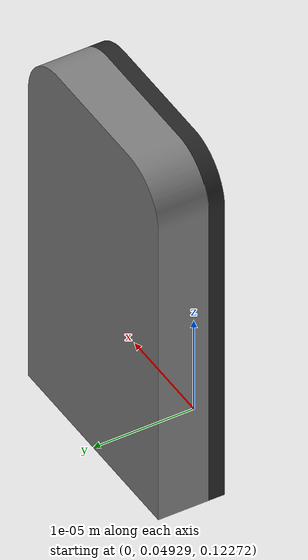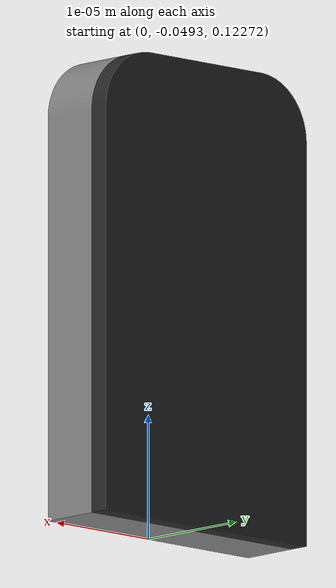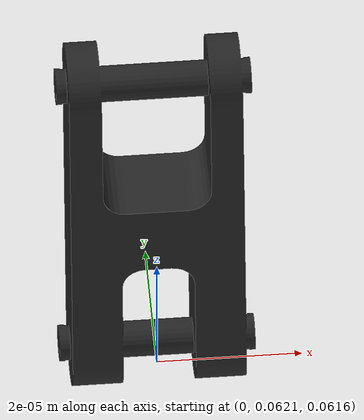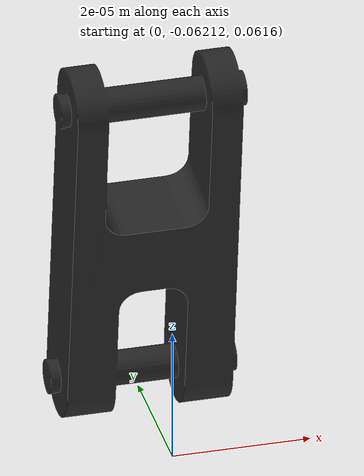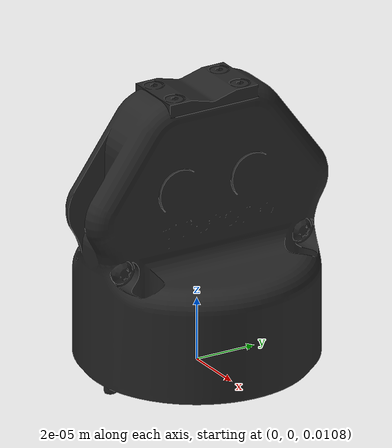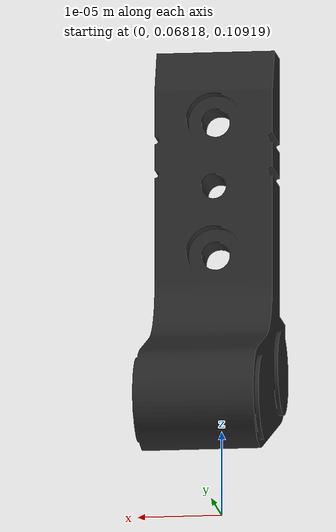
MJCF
<mujoco model="robotiq_2f85">
  <compiler angle="radian" meshdir="assets" autolimits="true"/>

  <option cone="elliptic" impratio="10"/>

  <asset>
    <material name="metal" rgba="0.58 0.58 0.58 1"/>
    <material name="silicone" rgba="0.1882 0.1882 0.1882 1"/>
    <material name="gray" rgba="0.4627 0.4627 0.4627 1"/>
    <material name="black" rgba="0.149 0.149 0.149 1"/>

    <mesh class="2f85" file="base_mount.stl"/>
    <mesh class="2f85" file="base.stl"/>
    <mesh class="2f85" file="driver.stl"/>
    <mesh class="2f85" file="coupler.stl"/>
    <mesh class="2f85" file="follower.stl"/>
    <mesh class="2f85" file="pad.stl"/>
    <mesh class="2f85" file="silicone_pad.stl"/>
    <mesh class="2f85" file="spring_link.stl"/>
  </asset>

  <default>
    <default class="2f85">
      <mesh scale="0.001 0.001 0.001"/>
      <general biastype="affine"/>
      <joint axis="1 0 0"/>
      <default class="driver">
        <joint range="0 0.8" armature="0.005" damping="0.1" solimplimit="0.95 0.99 0.001" solreflimit="0.005 1"/>
      </default>
      <default class="follower">
        <joint range="-0.872664 0.872664" armature="0.001" pos="0 -0.018 0.0065" solimplimit="0.95 0.99 0.001" solreflimit="0.005 1"/>
      </default>
      <default class="spring_link">
        <joint range="-0.29670597283 0.8" armature="0.001" stiffness="0.05" springref="2.62" damping="0.00125"/>
      </default>
      <default class="coupler">
        <joint range="-1.57 0" armature="0.001" solimplimit="0.95 0.99 0.001" solreflimit="0.005 1"/>
      </default>

      <default class="visual">
        <geom type="mesh" contype="0" conaffinity="0" group="2"/>
      </default>

      <default class="collision">
        <geom type="mesh" group="3"/>
        <!-- first, all collsions are included in group3 -->
        <default class="pad_box1">
          <geom mass="0" type="box" pos="0 -0.0026 0.028125" size="0.011 0.004 0.009375" friction="0.7"
            solimp="0.95 0.99 0.001" solref="0.004 1" priority="1" rgba="0.55 0.55 0.55 1"/>
        </default>

        <default class="pad_box2">
          <geom mass="0" type="box" pos="0 -0.0026 0.009375" size="0.011 0.004 0.009375" friction="0.6"
            solimp="0.95 0.99 0.001" solref="0.004 1" priority="1" rgba="0.45 0.45 0.45 1"/>
        </default>
        <!-- two pad_box subclasses under collision class, the only difference are pos, friction and color, I figure it must be the two layers of the fingertip pad, made of rubber and metal -->
      </default>
    </default>
  </default>

  <worldbody>
    <body name="base_mount" pos="0 0 0.007" childclass="2f85">
      <geom class="visual" mesh="base_mount" material="black"/>
      <geom class="collision" mesh="base_mount"/>
      <!-- ^first body, the base_mount, in the class "2f85" with common properties of mesh>scale, general>biastype and joint>axis-->
      <body name="base" pos="0 0 0.0038" quat="1 0 0 0">
      <!-- Recall that a 3D rotation by angle a a around axis given by the unit vector (x,y,z) corresponds to the quaternion (cos(a/2),sin(a/2)⋅(x,y,z)) -->
        <inertial mass="0.777441" pos="0 -2.70394e-05 0.0354675" quat="1 -0.00152849 0 0"
          diaginertia="0.000260285 0.000225381 0.000152708"/>
        <geom class="visual" mesh="base" material="black"/>
        <geom class="collision" mesh="base"/>
        <site name="pinch" pos="0 0 0.145" type="sphere" group="5" rgba="0.9 0.9 0.9 1" size="0.005"/>
        <!-- ^second body is the gripper base (hub), in class "visual" and "collision" -->
        <!-- Right-hand side 4-bar linkage -->
        <body name="right_driver" pos="0 0.0306011 0.054904">
          <inertial mass="0.00899563" pos="2.96931e-12 0.0177547 0.00107314" quat="0.681301 0.732003 0 0"
            diaginertia="1.72352e-06 1.60906e-06 3.22006e-07"/>
          <joint name="right_driver_joint" class="driver"/>
          <geom class="visual" mesh="driver" material="gray"/>
          <geom class="collision" mesh="driver"/>
          <!-- ^third body is the right crank, in class "visual", "collision" and "driver"-->
          <body name="right_coupler" pos="0 0.0315 -0.0041">
            <inertial mass="0.0140974" pos="0 0.00301209 0.0232175" quat="0.705636 -0.0455904 0.0455904 0.705636"
              diaginertia="4.16206e-06 3.52216e-06 8.88131e-07"/>
            <joint name="right_coupler_joint" class="coupler"/>
            <geom class="visual" mesh="coupler" material="black"/>
            <geom class="collision" mesh="coupler"/>
            <!-- ^fourth body is the right coupler (L2), in class "visual", "collision" and "coupler"-->
          </body>
        </body>
        <body name="right_spring_link" pos="0 0.0132 0.0609">
          <inertial mass="0.0221642" pos="-8.65005e-09 0.0181624 0.0212658" quat="0.663403 -0.244737 0.244737 0.663403"
            diaginertia="8.96853e-06 6.71733e-06 2.63931e-06"/>
          <joint name="right_spring_link_joint" class="spring_link"/>
          <geom class="visual" mesh="spring_link" material="black"/>
          <geom class="collision" mesh="spring_link"/>
          <!-- ^fifth body is the right spring link (L4), in class "visual", "collision" and "spring_link"-->
          <body name="right_follower" pos="0 0.055 0.0375">
            <inertial mass="0.0125222" pos="0 -0.011046 0.0124786" quat="1 0.1664 0 0"
              diaginertia="2.67415e-06 2.4559e-06 6.02031e-07"/>
            <joint name="right_follower_joint" class="follower"/>
            <geom class="visual" mesh="follower" material="black"/>
            <geom class="collision" mesh="follower"/>
            <!-- ^sixth body is the right follower (L3), in class "visual", "collision" and "follower"-->
            <body name="right_pad" pos="0 -0.0189 0.01352">
              <geom class="pad_box1" name="right_pad1"/>
              <geom class="pad_box2" name="right_pad2"/>
              <inertial mass="0.0035" pos="0 -0.0025 0.0185" quat="0.707107 0 0 0.707107"
                diaginertia="4.73958e-07 3.64583e-07 1.23958e-07"/>
              <geom class="visual" mesh="pad"/>
              <!-- ^7th body is the right pad (tip-actual), in class "visual", "pad_box1" "pad_box2"-->
              <body name="right_silicone_pad">
                <geom class="visual" mesh="silicone_pad" material="black"/>
                <!-- ^8th body is the right silicone pad (tip-cosmatic), in class "visual"-->
              </body>
            </body>
          </body>
        </body>
        <!-- Left-hand side 4-bar linkage -->
        <body name="left_driver" pos="0 -0.0306011 0.054904" quat="0 0 0 1">
          <inertial mass="0.00899563" pos="0 0.0177547 0.00107314" quat="0.681301 0.732003 0 0"
            diaginertia="1.72352e-06 1.60906e-06 3.22006e-07"/>
          <joint name="left_driver_joint" class="driver"/>
          <geom class="visual" mesh="driver" material="gray"/>
          <geom class="collision" mesh="driver"/>
          <body name="left_coupler" pos="0 0.0315 -0.0041">
            <inertial mass="0.0140974" pos="0 0.00301209 0.0232175" quat="0.705636 -0.0455904 0.0455904 0.705636"
              diaginertia="4.16206e-06 3.52216e-06 8.88131e-07"/>
            <joint name="left_coupler_joint" class="coupler"/>
            <geom class="visual" mesh="coupler" material="black"/>
            <geom class="collision" mesh="coupler"/>
          </body>
        </body>
        <body name="left_spring_link" pos="0 -0.0132 0.0609" quat="0 0 0 1">
          <inertial mass="0.0221642" pos="-8.65005e-09 0.0181624 0.0212658" quat="0.663403 -0.244737 0.244737 0.663403"
            diaginertia="8.96853e-06 6.71733e-06 2.63931e-06"/>
          <joint name="left_spring_link_joint" class="spring_link"/>
          <geom class="visual" mesh="spring_link" material="black"/>
          <geom class="collision" mesh="spring_link"/>
          <body name="left_follower" pos="0 0.055 0.0375">
            <inertial mass="0.0125222" pos="0 -0.011046 0.0124786" quat="1 0.1664 0 0"
              diaginertia="2.67415e-06 2.4559e-06 6.02031e-07"/>
            <joint name="left_follower_joint" class="follower"/>
            <geom class="visual" mesh="follower" material="black"/>
            <geom class="collision" mesh="follower"/>
            <body name="left_pad" pos="0 -0.0189 0.01352">
              <geom class="pad_box1" name="left_pad1"/>
              <geom class="pad_box2" name="left_pad2"/>
              <inertial mass="0.0035" pos="0 -0.0025 0.0185" quat="1 0 0 1"
                diaginertia="4.73958e-07 3.64583e-07 1.23958e-07"/>
              <geom class="visual" mesh="pad"/>
              <body name="left_silicone_pad">
                <geom class="visual" mesh="silicone_pad" material="black"/>
              </body>
            </body>
          </body>
        </body>
      </body>
    </body>
  </worldbody>

  <contact>
    <exclude body1="base" body2="left_driver"/>
    <exclude body1="base" body2="right_driver"/>
    <exclude body1="base" body2="left_spring_link"/>
    <exclude body1="base" body2="right_spring_link"/>
    <exclude body1="right_coupler" body2="right_follower"/>
    <exclude body1="left_coupler" body2="left_follower"/>
  </contact>

  <tendon>
    <fixed name="split">
      <joint joint="right_driver_joint" coef="0.5"/>
      <joint joint="left_driver_joint" coef="0.5"/>
    </fixed>
  </tendon>

  <equality>
    <connect anchor="0 0 0" body1="right_follower" body2="right_coupler" solimp="0.95 0.99 0.001" solref="0.005 1"/>
    <connect anchor="0 0 0" body1="left_follower" body2="left_coupler" solimp="0.95 0.99 0.001" solref="0.005 1"/>
    <joint joint1="right_driver_joint" joint2="left_driver_joint" polycoef="0 1 0 0 0" solimp="0.95 0.99 0.001" solref="0.005 1"/>
  </equality>

  <actuator>
    <general class="2f85" name="fingers_actuator" tendon="split" forcerange="-5 5" ctrlrange="0 255"
      gainprm="0.3137255 0 0" biasprm="0 -100 -10"/>
  </actuator>

</mujoco>
